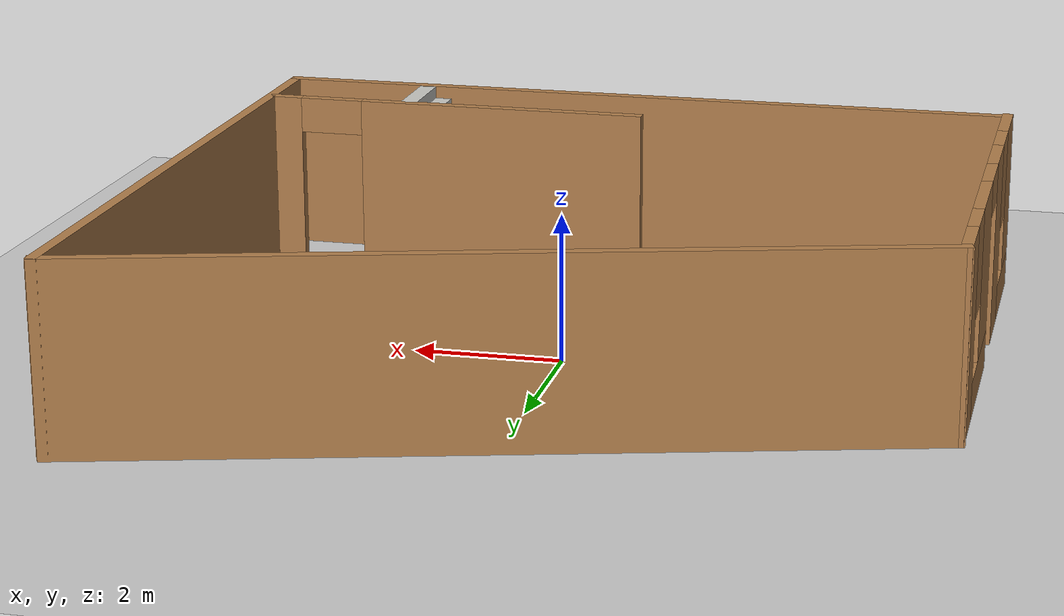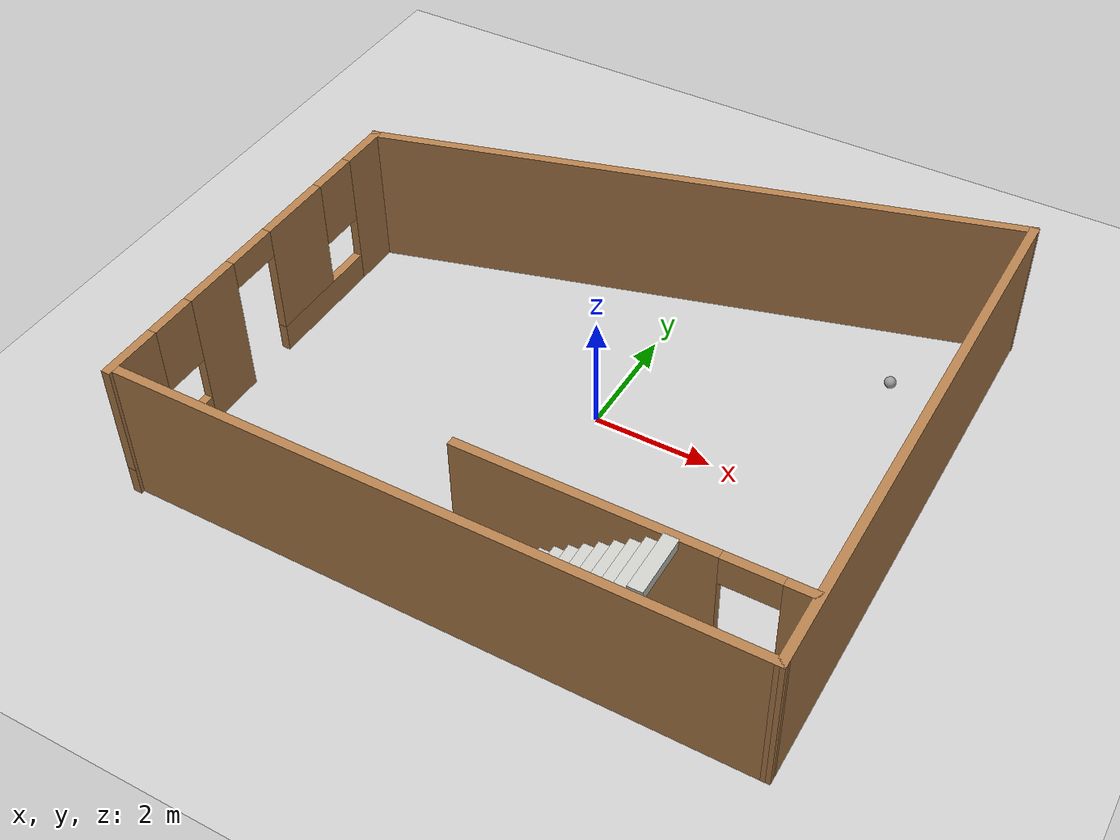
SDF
<sdf version="1.6">
 <world name="default">
  <light name="sun" type="directional">
   <pose>0 0 10 0 -0 0</pose>
   <diffuse>0.8 0.8 0.8 1</diffuse>
   <specular>0.2 0.2 0.2 1</specular>
   <attenuation>
    <range>1000</range>
    <constant>0.9</constant>
    <linear>0.01</linear>
    <quadratic>0.001</quadratic>
   </attenuation>
   <direction>-0.5 0.1 -0.9</direction>
  </light>
  <model name="ground_plane">
   <static>1</static>
   <link name="link">
    <collision name="collision">
     <geometry><plane><normal>0 0 1</normal><size>100 100</size></plane></geometry>
     <surface><friction><ode><mu>100</mu><mu2>50</mu2></ode></friction></surface>
    </collision>
    <visual name="visual">
     <cast_shadows>0</cast_shadows>
     <geometry><plane><normal>0 0 1</normal><size>100 100</size></plane></geometry>
     <material>
      <script><uri>file://media/materials/scripts/gazebo.material</uri><name>Gazebo/Grey</name></script>
     </material>
    </visual>
   </link>
  </model>
  <gravity>0 0 -9.8</gravity>
  <magnetic_field>6e-06 2.3e-05 -4.2e-05</magnetic_field>
  <atmosphere type="adiabatic"/>
  <physics name="default_physics" default="0" type="ode">
   <max_step_size>0.001</max_step_size>
   <real_time_factor>1</real_time_factor>
   <real_time_update_rate>1000</real_time_update_rate>
  </physics>
  <scene><ambient>0.4 0.4 0.4 1</ambient><background>0.7 0.7 0.7 1</background><shadows>1</shadows></scene>
  <spherical_coordinates>
   <surface_model>EARTH_WGS84</surface_model>
   <latitude_deg>0</latitude_deg>
   <longitude_deg>0</longitude_deg>
   <elevation>0</elevation>
   <heading_deg>0</heading_deg>
  </spherical_coordinates>
  <model name="my_hall">
   <pose>-0.095419 0.074023 0 0 -0 0</pose>
   <link name="Stairs_2">
    <visual name="Stairs_2_Visual_0">
     <pose>-0.083572 -4.10664 0.083333 0 -0 1.5708</pose>
     <geometry><box><size>1 0.233333 0.166667</size></box></geometry>
     <material>
      <script><uri>file://media/materials/scripts/gazebo.material</uri><name>Gazebo/CeilingTiled</name></script>
      <ambient>1 1 1 1</ambient>
     </material>
     <meta><layer>0</layer></meta>
    </visual>
    <collision name="Stairs_2_Collision_0">
     <geometry><box><size>1 0.233333 0.166667</size></box></geometry>
     <pose>-0.083572 -4.10664 0.083333 0 -0 1.5708</pose>
    </collision>
    <visual name="Stairs_2_Visual_1">
     <pose>0.149762 -4.10664 0.25 0 -0 1.5708</pose>
     <geometry><box><size>1 0.233333 0.166667</size></box></geometry>
     <material>
      <script><uri>file://media/materials/scripts/gazebo.material</uri><name>Gazebo/CeilingTiled</name></script>
      <ambient>1 1 1 1</ambient>
     </material>
     <meta><layer>0</layer></meta>
    </visual>
    <collision name="Stairs_2_Collision_1">
     <geometry><box><size>1 0.233333 0.166667</size></box></geometry>
     <pose>0.149762 -4.10664 0.25 0 -0 1.5708</pose>
    </collision>
    <visual name="Stairs_2_Visual_2">
     <pose>0.383095 -4.10664 0.416667 0 -0 1.5708</pose>
     <geometry><box><size>1 0.233333 0.166667</size></box></geometry>
     <material>
      <script><uri>file://media/materials/scripts/gazebo.material</uri><name>Gazebo/CeilingTiled</name></script>
      <ambient>1 1 1 1</ambient>
     </material>
     <meta><layer>0</layer></meta>
    </visual>
    <collision name="Stairs_2_Collision_2">
     <geometry><box><size>1 0.233333 0.166667</size></box></geometry>
     <pose>0.383095 -4.10664 0.416667 0 -0 1.5708</pose>
    </collision>
    <visual name="Stairs_2_Visual_3">
     <pose>0.616428 -4.10664 0.583333 0 -0 1.5708</pose>
     <geometry><box><size>1 0.233333 0.166667</size></box></geometry>
     <material>
      <script><uri>file://media/materials/scripts/gazebo.material</uri><name>Gazebo/CeilingTiled</name></script>
      <ambient>1 1 1 1</ambient>
     </material>
     <meta><layer>0</layer></meta>
    </visual>
    <collision name="Stairs_2_Collision_3">
     <geometry><box><size>1 0.233333 0.166667</size></box></geometry>
     <pose>0.616428 -4.10664 0.583333 0 -0 1.5708</pose>
    </collision>
    <visual name="Stairs_2_Visual_4">
     <pose>0.849762 -4.10664 0.75 0 -0 1.5708</pose>
     <geometry><box><size>1 0.233333 0.166667</size></box></geometry>
     <material>
      <script><uri>file://media/materials/scripts/gazebo.material</uri><name>Gazebo/CeilingTiled</name></script>
      <ambient>1 1 1 1</ambient>
     </material>
     <meta><layer>0</layer></meta>
    </visual>
    <collision name="Stairs_2_Collision_4">
     <geometry><box><size>1 0.233333 0.166667</size></box></geometry>
     <pose>0.849762 -4.10664 0.75 0 -0 1.5708</pose>
    </collision>
    <visual name="Stairs_2_Visual_5">
     <pose>1.08309 -4.10664 0.916667 0 -0 1.5708</pose>
     <geometry><box><size>1 0.233333 0.166667</size></box></geometry>
     <material>
      <script><uri>file://media/materials/scripts/gazebo.material</uri><name>Gazebo/CeilingTiled</name></script>
      <ambient>1 1 1 1</ambient>
     </material>
     <meta><layer>0</layer></meta>
    </visual>
    <collision name="Stairs_2_Collision_5">
     <geometry><box><size>1 0.233333 0.166667</size></box></geometry>
     <pose>1.08309 -4.10664 0.916667 0 -0 1.5708</pose>
    </collision>
    <visual name="Stairs_2_Visual_6">
     <pose>1.31643 -4.10664 1.08333 0 -0 1.5708</pose>
     <geometry><box><size>1 0.233333 0.166667</size></box></geometry>
     <material>
      <script><uri>file://media/materials/scripts/gazebo.material</uri><name>Gazebo/CeilingTiled</name></script>
      <ambient>1 1 1 1</ambient>
     </material>
     <meta><layer>0</layer></meta>
    </visual>
    <collision name="Stairs_2_Collision_6">
     <geometry><box><size>1 0.233333 0.166667</size></box></geometry>
     <pose>1.31643 -4.10664 1.08333 0 -0 1.5708</pose>
    </collision>
    <visual name="Stairs_2_Visual_7">
     <pose>1.54976 -4.10664 1.25 0 -0 1.5708</pose>
     <geometry><box><size>1 0.233333 0.166667</size></box></geometry>
     <material>
      <script><uri>file://media/materials/scripts/gazebo.material</uri><name>Gazebo/CeilingTiled</name></script>
      <ambient>1 1 1 1</ambient>
     </material>
     <meta><layer>0</layer></meta>
    </visual>
    <collision name="Stairs_2_Collision_7">
     <geometry><box><size>1 0.233333 0.166667</size></box></geometry>
     <pose>1.54976 -4.10664 1.25 0 -0 1.5708</pose>
    </collision>
    <visual name="Stairs_2_Visual_8">
     <pose>1.7831 -4.10664 1.41667 0 -0 1.5708</pose>
     <geometry><box><size>1 0.233333 0.166667</size></box></geometry>
     <material>
      <script><uri>file://media/materials/scripts/gazebo.material</uri><name>Gazebo/CeilingTiled</name></script>
      <ambient>1 1 1 1</ambient>
     </material>
     <meta><layer>0</layer></meta>
    </visual>
    <collision name="Stairs_2_Collision_8">
     <geometry><box><size>1 0.233333 0.166667</size></box></geometry>
     <pose>1.7831 -4.10664 1.41667 0 -0 1.5708</pose>
    </collision>
    <visual name="Stairs_2_Visual_9">
     <pose>2.01643 -4.10664 1.58333 0 -0 1.5708</pose>
     <geometry><box><size>1 0.233333 0.166667</size></box></geometry>
     <material>
      <script><uri>file://media/materials/scripts/gazebo.material</uri><name>Gazebo/CeilingTiled</name></script>
      <ambient>1 1 1 1</ambient>
     </material>
     <meta><layer>0</layer></meta>
    </visual>
    <collision name="Stairs_2_Collision_9">
     <geometry><box><size>1 0.233333 0.166667</size></box></geometry>
     <pose>2.01643 -4.10664 1.58333 0 -0 1.5708</pose>
    </collision>
    <visual name="Stairs_2_Visual_10">
     <pose>2.24976 -4.10664 1.75 0 -0 1.5708</pose>
     <geometry><box><size>1 0.233333 0.166667</size></box></geometry>
     <material>
      <script><uri>file://media/materials/scripts/gazebo.material</uri><name>Gazebo/CeilingTiled</name></script>
      <ambient>1 1 1 1</ambient>
     </material>
     <meta><layer>0</layer></meta>
    </visual>
    <collision name="Stairs_2_Collision_10">
     <geometry><box><size>1 0.233333 0.166667</size></box></geometry>
     <pose>2.24976 -4.10664 1.75 0 -0 1.5708</pose>
    </collision>
    <visual name="Stairs_2_Visual_11">
     <pose>2.4831 -4.10664 1.91667 0 -0 1.5708</pose>
     <geometry><box><size>1 0.233333 0.166667</size></box></geometry>
     <material>
      <script><uri>file://media/materials/scripts/gazebo.material</uri><name>Gazebo/CeilingTiled</name></script>
      <ambient>1 1 1 1</ambient>
     </material>
     <meta><layer>0</layer></meta>
    </visual>
    <collision name="Stairs_2_Collision_11">
     <geometry><box><size>1 0.233333 0.166667</size></box></geometry>
     <pose>2.4831 -4.10664 1.91667 0 -0 1.5708</pose>
    </collision>
    <visual name="Stairs_2_Visual_12">
     <pose>2.71643 -4.10664 2.08333 0 -0 1.5708</pose>
     <geometry><box><size>1 0.233333 0.166667</size></box></geometry>
     <material>
      <script><uri>file://media/materials/scripts/gazebo.material</uri><name>Gazebo/CeilingTiled</name></script>
      <ambient>1 1 1 1</ambient>
     </material>
     <meta><layer>0</layer></meta>
    </visual>
    <collision name="Stairs_2_Collision_12">
     <geometry><box><size>1 0.233333 0.166667</size></box></geometry>
     <pose>2.71643 -4.10664 2.08333 0 -0 1.5708</pose>
    </collision>
    <visual name="Stairs_2_Visual_13">
     <pose>2.94976 -4.10664 2.25 0 -0 1.5708</pose>
     <geometry><box><size>1 0.233333 0.166667</size></box></geometry>
     <material>
      <script><uri>file://media/materials/scripts/gazebo.material</uri><name>Gazebo/CeilingTiled</name></script>
      <ambient>1 1 1 1</ambient>
     </material>
     <meta><layer>0</layer></meta>
    </visual>
    <collision name="Stairs_2_Collision_13">
     <geometry><box><size>1 0.233333 0.166667</size></box></geometry>
     <pose>2.94976 -4.10664 2.25 0 -0 1.5708</pose>
    </collision>
    <visual name="Stairs_2_Visual_14">
     <pose>3.1831 -4.10664 2.41667 0 -0 1.5708</pose>
     <geometry><box><size>1 0.233333 0.166667</size></box></geometry>
     <material>
      <script><uri>file://media/materials/scripts/gazebo.material</uri><name>Gazebo/CeilingTiled</name></script>
      <ambient>1 1 1 1</ambient>
     </material>
     <meta><layer>0</layer></meta>
    </visual>
    <collision name="Stairs_2_Collision_14">
     <geometry><box><size>1 0.233333 0.166667</size></box></geometry>
     <pose>3.1831 -4.10664 2.41667 0 -0 1.5708</pose>
    </collision>
   </link>
   <link name="Wall_19">
    <collision name="Wall_19_Collision">
     <geometry><box><size>10.5 0.15 2.5</size></box></geometry>
     <pose>0 0 1.25 0 -0 0</pose>
    </collision>
    <visual name="Wall_19_Visual">
     <pose>0 0 1.25 0 -0 0</pose>
     <geometry><box><size>10.5 0.15 2.5</size></box></geometry>
     <material>
      <script><uri>file://media/materials/scripts/gazebo.material</uri><name>Gazebo/Wood</name></script>
      <ambient>1 1 1 1</ambient>
     </material>
     <meta><layer>0</layer></meta>
    </visual>
    <pose>0.073803 -4.71585 0 0 -0 0</pose>
   </link>
   <link name="Wall_21">
    <collision name="Wall_21_Collision">
     <geometry><box><size>9.60496 0.15 2.5</size></box></geometry>
     <pose>0 0 1.25 0 -0 0</pose>
    </collision>
    <visual name="Wall_21_Visual">
     <pose>0 0 1.25 0 -0 0</pose>
     <geometry><box><size>9.60496 0.15 2.5</size></box></geometry>
     <material>
      <script><uri>file://media/materials/scripts/gazebo.material</uri><name>Gazebo/Wood</name></script>
      <ambient>1 1 1 1</ambient>
     </material>
     <meta><layer>0</layer></meta>
    </visual>
    <pose>5.24006 0.011624 0 0 -0 1.57265</pose>
   </link>
   <link name="Wall_25">
    <collision name="Wall_25_Collision">
     <geometry><box><size>11.0155 0.15 2.5</size></box></geometry>
     <pose>0 0 1.25 0 -0 0</pose>
    </collision>
    <visual name="Wall_25_Visual">
     <pose>0 0 1.25 0 -0 0</pose>
     <geometry><box><size>11.0155 0.15 2.5</size></box></geometry>
     <material>
      <script><uri>file://media/materials/scripts/gazebo.material</uri><name>Gazebo/Wood</name></script>
      <ambient>1 1 1 1</ambient>
     </material>
     <meta><layer>0</layer></meta>
    </visual>
    <pose>-9e-05 3.29128 0 0 0 -2.86849</pose>
   </link>
   <link name="Wall_26">
    <pose>-5.23149 -1.47403 0 0 0 -1.5708</pose>
    <visual name="Wall_26_Visual_0">
     <pose>-2.91428 0 1.25 0 -0 0</pose>
     <geometry><box><size>0.92144 0.15 2.5</size></box></geometry>
     <material>
      <script><uri>file://media/materials/scripts/gazebo.material</uri><name>Gazebo/Wood</name></script>
      <ambient>1 1 1 1</ambient>
     </material>
     <meta><layer>0</layer></meta>
    </visual>
    <collision name="Wall_26_Collision_0">
     <geometry><box><size>0.92144 0.15 2.5</size></box></geometry>
     <pose>-2.91428 0 1.25 0 -0 0</pose>
    </collision>
    <visual name="Wall_26_Visual_1">
     <pose>1.06917 0 1.25 0 -0 0</pose>
     <geometry><box><size>0.999973 0.15 2.5</size></box></geometry>
     <material>
      <script><uri>file://media/materials/scripts/gazebo.material</uri><name>Gazebo/Wood</name></script>
      <ambient>1 1 1 1</ambient>
     </material>
     <meta><layer>0</layer></meta>
    </visual>
    <collision name="Wall_26_Collision_1">
     <geometry><box><size>0.999973 0.15 2.5</size></box></geometry>
     <pose>1.06917 0 1.25 0 -0 0</pose>
    </collision>
    <visual name="Wall_26_Visual_2">
     <pose>-1.39219 0 0.25 0 -0 0</pose>
     <geometry><box><size>2.12274 0.15 0.5</size></box></geometry>
     <material>
      <script><uri>file://media/materials/scripts/gazebo.material</uri><name>Gazebo/Wood</name></script>
      <ambient>1 1 1 1</ambient>
     </material>
     <meta><layer>0</layer></meta>
    </visual>
    <collision name="Wall_26_Collision_2">
     <geometry><box><size>2.12274 0.15 0.5</size></box></geometry>
     <pose>-1.39219 0 0.25 0 -0 0</pose>
    </collision>
    <visual name="Wall_26_Visual_3">
     <pose>2.47208 0 0.25 0 -0 0</pose>
     <geometry><box><size>1.80585 0.15 0.5</size></box></geometry>
     <material>
      <script><uri>file://media/materials/scripts/gazebo.material</uri><name>Gazebo/Wood</name></script>
      <ambient>1 1 1 1</ambient>
     </material>
     <meta><layer>0</layer></meta>
    </visual>
    <collision name="Wall_26_Collision_3">
     <geometry><box><size>1.80585 0.15 0.5</size></box></geometry>
     <pose>2.47208 0 0.25 0 -0 0</pose>
    </collision>
    <visual name="Wall_26_Visual_4">
     <pose>-0.99219 0 1.5 0 -0 0</pose>
     <geometry><box><size>1.32274 0.15 2</size></box></geometry>
     <material>
      <script><uri>file://media/materials/scripts/gazebo.material</uri><name>Gazebo/Wood</name></script>
      <ambient>1 1 1 1</ambient>
     </material>
     <meta><layer>0</layer></meta>
    </visual>
    <collision name="Wall_26_Collision_4">
     <geometry><box><size>1.32274 0.15 2</size></box></geometry>
     <pose>-0.99219 0 1.5 0 -0 0</pose>
    </collision>
    <visual name="Wall_26_Visual_5">
     <pose>-0.99219 0 1.5 0 -0 0</pose>
     <geometry><box><size>1.32274 0.15 2</size></box></geometry>
     <material>
      <script><uri>file://media/materials/scripts/gazebo.material</uri><name>Gazebo/Wood</name></script>
      <ambient>1 1 1 1</ambient>
     </material>
     <meta><layer>0</layer></meta>
    </visual>
    <collision name="Wall_26_Collision_5">
     <geometry><box><size>1.32274 0.15 2</size></box></geometry>
     <pose>-0.99219 0 1.5 0 -0 0</pose>
    </collision>
    <visual name="Wall_26_Visual_6">
     <pose>2.87208 0 1.5 0 -0 0</pose>
     <geometry><box><size>1.00585 0.15 2</size></box></geometry>
     <material>
      <script><uri>file://media/materials/scripts/gazebo.material</uri><name>Gazebo/Wood</name></script>
      <ambient>1 1 1 1</ambient>
     </material>
     <meta><layer>0</layer></meta>
    </visual>
    <collision name="Wall_26_Collision_6">
     <geometry><box><size>1.00585 0.15 2</size></box></geometry>
     <pose>2.87208 0 1.5 0 -0 0</pose>
    </collision>
    <visual name="Wall_26_Visual_7">
     <pose>-2.05356 0 1.9 0 -0 0</pose>
     <geometry><box><size>0.8 0.15 1.2</size></box></geometry>
     <material>
      <script><uri>file://media/materials/scripts/gazebo.material</uri><name>Gazebo/Wood</name></script>
      <ambient>1 1 1 1</ambient>
     </material>
     <meta><layer>0</layer></meta>
    </visual>
    <collision name="Wall_26_Collision_7">
     <geometry><box><size>0.8 0.15 1.2</size></box></geometry>
     <pose>-2.05356 0 1.9 0 -0 0</pose>
    </collision>
    <visual name="Wall_26_Visual_8">
     <pose>1.96915 0 1.9 0 -0 0</pose>
     <geometry><box><size>0.8 0.15 1.2</size></box></geometry>
     <material>
      <script><uri>file://media/materials/scripts/gazebo.material</uri><name>Gazebo/Wood</name></script>
      <ambient>1 1 1 1</ambient>
     </material>
     <meta><layer>0</layer></meta>
    </visual>
    <collision name="Wall_26_Collision_8">
     <geometry><box><size>0.8 0.15 1.2</size></box></geometry>
     <pose>1.96915 0 1.9 0 -0 0</pose>
    </collision>
    <visual name="Wall_26_Visual_9">
     <pose>0.119181 0 2.25 0 -0 0</pose>
     <geometry><box><size>0.9 0.15 0.5</size></box></geometry>
     <material>
      <script><uri>file://media/materials/scripts/gazebo.material</uri><name>Gazebo/Wood</name></script>
      <ambient>1 1 1 1</ambient>
     </material>
     <meta><layer>0</layer></meta>
    </visual>
    <collision name="Wall_26_Collision_9">
     <geometry><box><size>0.9 0.15 0.5</size></box></geometry>
     <pose>0.119181 0 2.25 0 -0 0</pose>
    </collision>
    <visual name="Wall_26_Visual_10">
     <pose>0.119181 0 2.25 0 -0 0</pose>
     <geometry><box><size>0.9 0.15 0.5</size></box></geometry>
     <material>
      <script><uri>file://media/materials/scripts/gazebo.material</uri><name>Gazebo/Wood</name></script>
      <ambient>1 1 1 1</ambient>
     </material>
     <meta><layer>0</layer></meta>
    </visual>
    <collision name="Wall_26_Collision_10">
     <geometry><box><size>0.9 0.15 0.5</size></box></geometry>
     <pose>0.119181 0 2.25 0 -0 0</pose>
    </collision>
   </link>
   <link name="Wall_28">
    <pose>2.51513 -3.56562 0 0 -0 0</pose>
    <visual name="Wall_28_Visual_0">
     <pose>-0.698772 0 1.25 0 -0 0</pose>
     <geometry><box><size>4.10246 0.15 2.5</size></box></geometry>
     <material>
      <script><uri>file://media/materials/scripts/gazebo.material</uri><name>Gazebo/Wood</name></script>
      <ambient>1 0.764706 0.305882 1</ambient>
     </material>
     <meta><layer>0</layer></meta>
    </visual>
    <collision name="Wall_28_Collision_0">
     <geometry><box><size>4.10246 0.15 2.5</size></box></geometry>
     <pose>-0.698772 0 1.25 0 -0 0</pose>
    </collision>
    <visual name="Wall_28_Visual_1">
     <pose>2.50123 0 1.25 0 -0 0</pose>
     <geometry><box><size>0.497544 0.15 2.5</size></box></geometry>
     <material>
      <script><uri>file://media/materials/scripts/gazebo.material</uri><name>Gazebo/Wood</name></script>
      <ambient>1 0.764706 0.305882 1</ambient>
     </material>
     <meta><layer>0</layer></meta>
    </visual>
    <collision name="Wall_28_Collision_1">
     <geometry><box><size>0.497544 0.15 2.5</size></box></geometry>
     <pose>2.50123 0 1.25 0 -0 0</pose>
    </collision>
    <visual name="Wall_28_Visual_2">
     <pose>1.80246 0 2.25 0 -0 0</pose>
     <geometry><box><size>0.9 0.15 0.5</size></box></geometry>
     <material>
      <script><uri>file://media/materials/scripts/gazebo.material</uri><name>Gazebo/Wood</name></script>
      <ambient>1 0.764706 0.305882 1</ambient>
     </material>
     <meta><layer>0</layer></meta>
    </visual>
    <collision name="Wall_28_Collision_2">
     <geometry><box><size>0.9 0.15 0.5</size></box></geometry>
     <pose>1.80246 0 2.25 0 -0 0</pose>
    </collision>
   </link>
   <static>1</static>
  </model>
  <model name="white_ball">
   <link name="link_0">
    <inertial>
     <mass>1</mass>
     <inertia><ixx>0.1</ixx><ixy>0</ixy><ixz>0</ixz><iyy>0.1</iyy><iyz>0</iyz><izz>0.1</izz></inertia>
    </inertial>
    <visual name="visual">
     <geometry><sphere><radius>0.1</radius></sphere></geometry>
     <material>
      <lighting>1</lighting>
      <script><uri>file://media/materials/scripts/gazebo.material</uri><name>Gazebo/Grey</name></script>
      <shader type="pixel"><normal_map>__default__</normal_map></shader>
      <ambient>1 1 1 1</ambient>
      <diffuse>1 1 1 1</diffuse>
      <specular>1 1 1 1</specular>
      <emissive>1 1 1 1</emissive>
     </material>
    </visual>
    <collision name="collision">
     <geometry><sphere><radius>0.1</radius></sphere></geometry>
     <surface>
      <friction>
       <ode><mu>1</mu><mu2>1</mu2><fdir1>0 0 0</fdir1><slip1>0</slip1><slip2>0</slip2></ode>
       <torsional>
        <coefficient>1</coefficient>
        <patch_radius>0</patch_radius>
        <surface_radius>0</surface_radius>
        <use_patch_radius>1</use_patch_radius>
        <ode><slip>0</slip></ode>
       </torsional>
      </friction>
      <bounce><restitution_coefficient>0</restitution_coefficient><threshold>1e+06</threshold></bounce>
      <contact>
       <collide_without_contact>0</collide_without_contact>
       <collide_without_contact_bitmask>1</collide_without_contact_bitmask>
       <collide_bitmask>1</collide_bitmask>
       <ode>
        <soft_cfm>0</soft_cfm>
        <soft_erp>0.2</soft_erp>
        <kp>1e+13</kp>
        <kd>1</kd>
        <max_vel>0.01</max_vel>
        <min_depth>0</min_depth>
       </ode>
       <bullet>
        <split_impulse>1</split_impulse>
        <split_impulse_penetration_threshold>-0.01</split_impulse_penetration_threshold>
        <soft_cfm>0</soft_cfm>
        <soft_erp>0.2</soft_erp>
        <kp>1e+13</kp>
        <kd>1</kd>
       </bullet>
      </contact>
     </surface>
    </collision>
   </link>
   <static>0</static>
   <pose>3.78669 2.98576 0.1 0 -0 0</pose>
  </model>
 </world>
</sdf>
